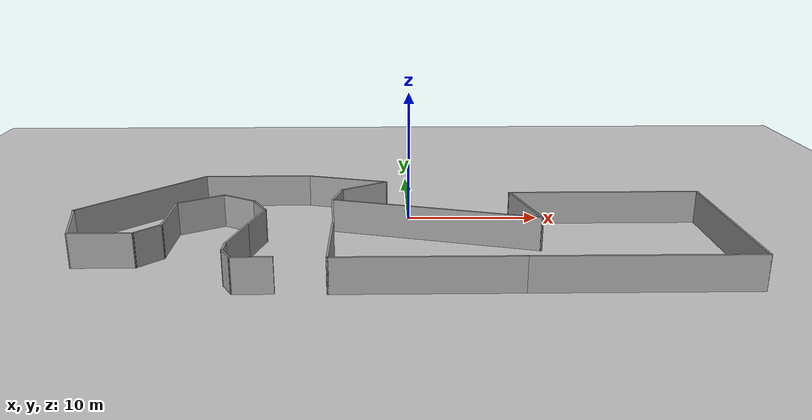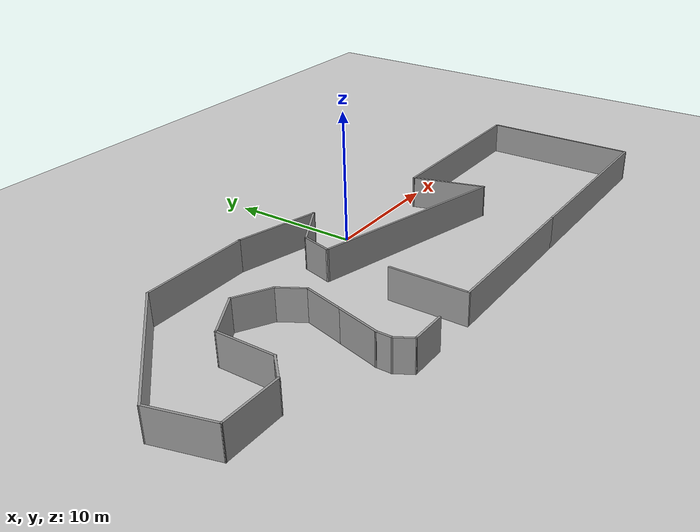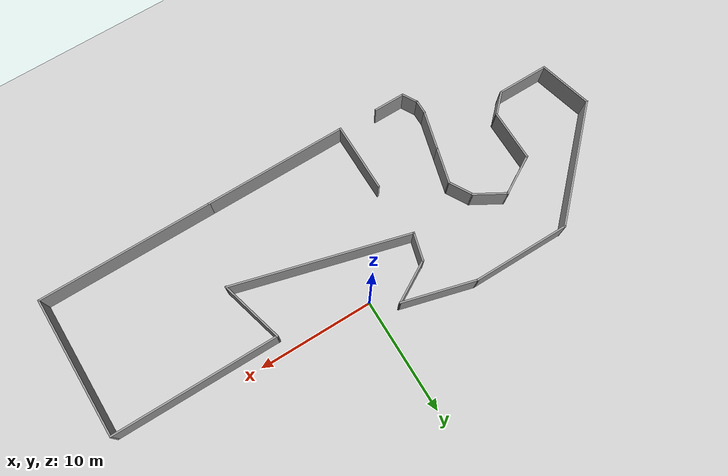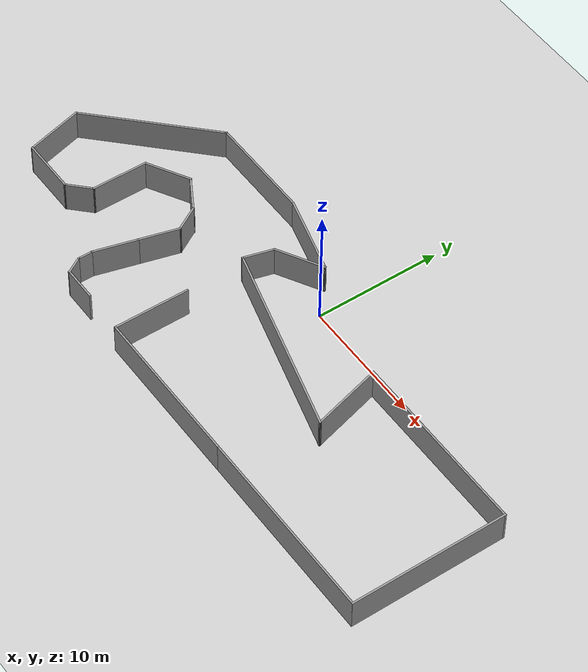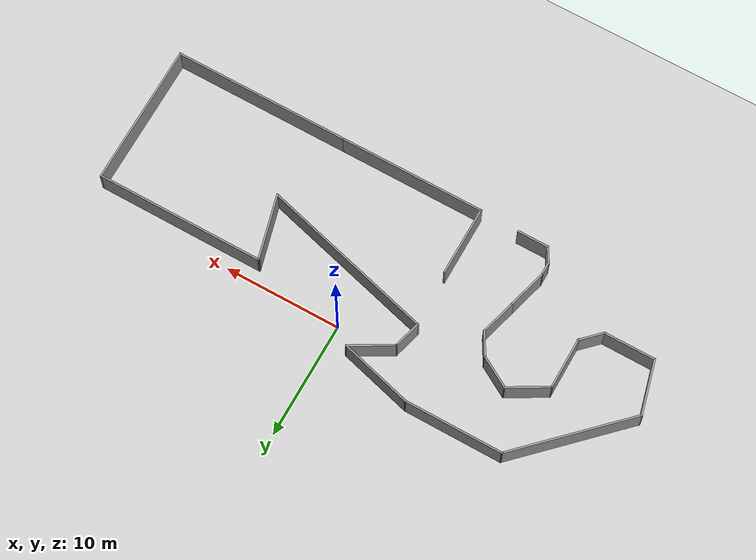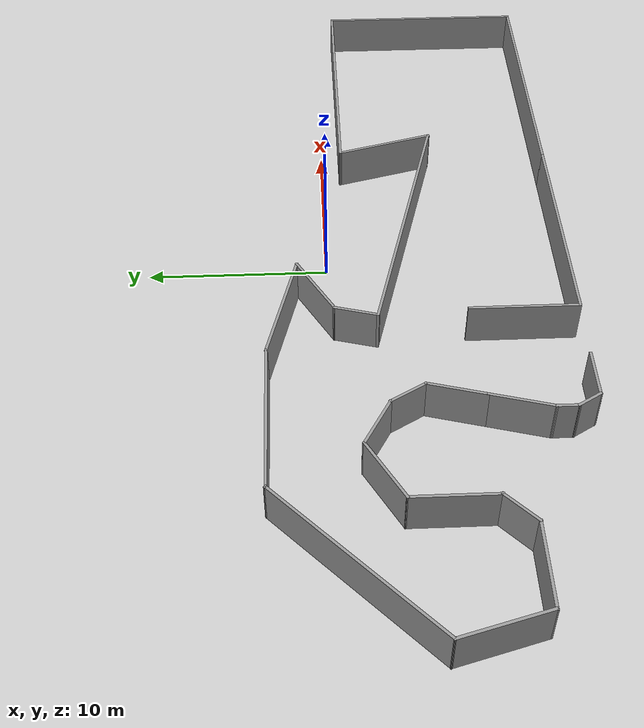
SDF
<sdf version="1.6">
 <world name="default">
  <light name="sun" type="directional">
   <pose>0 0 10 0 -0 0</pose>
   <diffuse>0.8 0.8 0.8 1</diffuse>
   <specular>0.1 0.1 0.1 1</specular>
   <attenuation>
    <range>1000</range>
    <constant>0.9</constant>
    <linear>0.01</linear>
    <quadratic>0.001</quadratic>
   </attenuation>
   <direction>-0.5 0.5 -1</direction>
  </light>
  <model name="ground_plane">
   <static>1</static>
   <link name="link">
    <collision name="collision">
     <geometry><plane><normal>0 0 1</normal><size>100 100</size></plane></geometry>
     <surface><friction><ode><mu>100</mu><mu2>50</mu2></ode></friction></surface>
    </collision>
    <visual name="visual">
     <cast_shadows>0</cast_shadows>
     <geometry><plane><normal>0 0 1</normal><size>100 100</size></plane></geometry>
     <material>
      <script><uri>file://media/materials/scripts/gazebo.material</uri><name>Gazebo/Grey</name></script>
     </material>
    </visual>
   </link>
  </model>
  <gravity>0 0 -9.8</gravity>
  <magnetic_field>6e-06 2.3e-05 -4.2e-05</magnetic_field>
  <atmosphere type="adiabatic"/>
  <physics name="default_physics" default="0" type="ode">
   <max_step_size>0.001</max_step_size>
   <real_time_factor>1</real_time_factor>
   <real_time_update_rate>1000</real_time_update_rate>
  </physics>
  <scene><ambient>0.4 0.4 0.4 1</ambient><background>0.7 0.7 0.7 1</background><shadows>1</shadows></scene>
  <spherical_coordinates>
   <surface_model>EARTH_WGS84</surface_model>
   <latitude_deg>0</latitude_deg>
   <longitude_deg>0</longitude_deg>
   <elevation>0</elevation>
   <heading_deg>0</heading_deg>
  </spherical_coordinates>
  <model name="example">
   <pose>-1.03544 -4.94798 0 0 -0 0</pose>
   <link name="Wall_10">
    <collision name="Wall_10_Collision">
     <geometry><box><size>6 0.15 2.5</size></box></geometry>
     <pose>0 0 1.25 0 -0 0</pose>
    </collision>
    <visual name="Wall_10_Visual">
     <pose>0 0 1.25 0 -0 0</pose>
     <geometry><box><size>6 0.15 2.5</size></box></geometry>
     <material>
      <script><uri>file://media/materials/scripts/gazebo.material</uri><name>Gazebo/Grey</name></script>
      <ambient>1 1 1 1</ambient>
     </material>
    </visual>
    <pose>-4.37563 -5.34159 0 0 0 -1.5708</pose>
   </link>
   <link name="Wall_11">
    <collision name="Wall_11_Collision">
     <geometry><box><size>12.5 0.15 2.5</size></box></geometry>
     <pose>0 0 1.25 0 -0 0</pose>
    </collision>
    <visual name="Wall_11_Visual">
     <pose>0 0 1.25 0 -0 0</pose>
     <geometry><box><size>12.5 0.15 2.5</size></box></geometry>
     <material>
      <script><uri>file://media/materials/scripts/gazebo.material</uri><name>Gazebo/Grey</name></script>
      <ambient>1 1 1 1</ambient>
     </material>
    </visual>
    <pose>1.79937 -8.26659 0 0 -0 0</pose>
   </link>
   <link name="Wall_12">
    <collision name="Wall_12_Collision">
     <geometry><box><size>15.25 0.15 2.5</size></box></geometry>
     <pose>0 0 1.25 0 -0 0</pose>
    </collision>
    <visual name="Wall_12_Visual">
     <pose>0 0 1.25 0 -0 0</pose>
     <geometry><box><size>15.25 0.15 2.5</size></box></geometry>
     <material>
      <script><uri>file://media/materials/scripts/gazebo.material</uri><name>Gazebo/Grey</name></script>
      <ambient>1 1 1 1</ambient>
     </material>
    </visual>
    <pose>15.5244 -8.26659 0 0 -0 0</pose>
   </link>
   <link name="Wall_13">
    <collision name="Wall_13_Collision">
     <geometry><box><size>12.25 0.15 2.5</size></box></geometry>
     <pose>0 0 1.25 0 -0 0</pose>
    </collision>
    <visual name="Wall_13_Visual">
     <pose>0 0 1.25 0 -0 0</pose>
     <geometry><box><size>12.25 0.15 2.5</size></box></geometry>
     <material>
      <script><uri>file://media/materials/scripts/gazebo.material</uri><name>Gazebo/Grey</name></script>
      <ambient>1 1 1 1</ambient>
     </material>
    </visual>
    <pose>23.0744 -2.21659 0 0 -0 1.5708</pose>
   </link>
   <link name="Wall_14">
    <collision name="Wall_14_Collision">
     <geometry><box><size>14.5 0.15 2.5</size></box></geometry>
     <pose>0 0 1.25 0 -0 0</pose>
    </collision>
    <visual name="Wall_14_Visual">
     <pose>0 0 1.25 0 -0 0</pose>
     <geometry><box><size>14.5 0.15 2.5</size></box></geometry>
     <material>
      <script><uri>file://media/materials/scripts/gazebo.material</uri><name>Gazebo/Grey</name></script>
      <ambient>1 1 1 1</ambient>
     </material>
    </visual>
    <pose>15.8994 3.83341 0 0 -0 3.14159</pose>
   </link>
   <link name="Wall_15">
    <collision name="Wall_15_Collision">
     <geometry><box><size>5.75 0.15 2.5</size></box></geometry>
     <pose>0 0 1.25 0 -0 0</pose>
    </collision>
    <visual name="Wall_15_Visual">
     <pose>0 0 1.25 0 -0 0</pose>
     <geometry><box><size>5.75 0.15 2.5</size></box></geometry>
     <material>
      <script><uri>file://media/materials/scripts/gazebo.material</uri><name>Gazebo/Grey</name></script>
      <ambient>1 1 1 1</ambient>
     </material>
    </visual>
    <pose>9.44906 1.12882 0 0 0 -1.309</pose>
   </link>
   <link name="Wall_16">
    <collision name="Wall_16_Collision">
     <geometry><box><size>15.5 0.15 2.5</size></box></geometry>
     <pose>0 0 1.25 0 -0 0</pose>
    </collision>
    <visual name="Wall_16_Visual">
     <pose>0 0 1.25 0 -0 0</pose>
     <geometry><box><size>15.5 0.15 2.5</size></box></geometry>
     <material>
      <script><uri>file://media/materials/scripts/gazebo.material</uri><name>Gazebo/Grey</name></script>
      <ambient>1 1 1 1</ambient>
     </material>
    </visual>
    <pose>2.76027 0.410661 0 0 -0 2.87979</pose>
   </link>
   <link name="Wall_17">
    <collision name="Wall_17_Collision">
     <geometry><box><size>2.5 0.15 2.5</size></box></geometry>
     <pose>0 0 1.25 0 -0 0</pose>
    </collision>
    <visual name="Wall_17_Visual">
     <pose>0 0 1.25 0 -0 0</pose>
     <geometry><box><size>2.5 0.15 2.5</size></box></geometry>
     <material>
      <script><uri>file://media/materials/scripts/gazebo.material</uri><name>Gazebo/Grey</name></script>
      <ambient>1 1 1 1</ambient>
     </material>
    </visual>
    <pose>-4.3491 3.53206 0 0 -0 1.309</pose>
   </link>
   <link name="Wall_18">
    <collision name="Wall_18_Collision">
     <geometry><box><size>4 0.15 2.5</size></box></geometry>
     <pose>0 0 1.25 0 -0 0</pose>
    </collision>
    <visual name="Wall_18_Visual">
     <pose>0 0 1.25 0 -0 0</pose>
     <geometry><box><size>4 0.15 2.5</size></box></geometry>
     <material>
      <script><uri>file://media/materials/scripts/gazebo.material</uri><name>Gazebo/Grey</name></script>
      <ambient>1 1 1 1</ambient>
     </material>
    </visual>
    <pose>-2.37789 5.62952 0 0 -0 0.523599</pose>
   </link>
   <link name="Wall_19">
    <collision name="Wall_19_Collision">
     <geometry><box><size>6.5 0.15 2.5</size></box></geometry>
     <pose>0 0 1.25 0 -0 0</pose>
    </collision>
    <visual name="Wall_19_Visual">
     <pose>0 0 1.25 0 -0 0</pose>
     <geometry><box><size>6.5 0.15 2.5</size></box></geometry>
     <material>
      <script><uri>file://media/materials/scripts/gazebo.material</uri><name>Gazebo/Grey</name></script>
      <ambient>1 1 1 1</ambient>
     </material>
    </visual>
    <pose>-3.7776 7.41377 0 0 -0 2.87979</pose>
   </link>
   <link name="Wall_20">
    <collision name="Wall_20_Collision">
     <geometry><box><size>8.5 0.15 2.5</size></box></geometry>
     <pose>0 0 1.25 0 -0 0</pose>
    </collision>
    <visual name="Wall_20_Visual">
     <pose>0 0 1.25 0 -0 0</pose>
     <geometry><box><size>8.5 0.15 2.5</size></box></geometry>
     <material>
      <script><uri>file://media/materials/scripts/gazebo.material</uri><name>Gazebo/Grey</name></script>
      <ambient>1 1 1 1</ambient>
     </material>
    </visual>
    <pose>-11.0194 8.23552 0 0 -0 3.14159</pose>
   </link>
   <link name="Wall_21">
    <collision name="Wall_21_Collision">
     <geometry><box><size>11.25 0.15 2.5</size></box></geometry>
     <pose>0 0 1.25 0 -0 0</pose>
    </collision>
    <visual name="Wall_21_Visual">
     <pose>0 0 1.25 0 -0 0</pose>
     <geometry><box><size>11.25 0.15 2.5</size></box></geometry>
     <material>
      <script><uri>file://media/materials/scripts/gazebo.material</uri><name>Gazebo/Grey</name></script>
      <ambient>1 1 1 1</ambient>
     </material>
    </visual>
    <pose>-19.1189 4.31108 0 0 0 -2.35619</pose>
   </link>
   <link name="Wall_22">
    <collision name="Wall_22_Collision">
     <geometry><box><size>4.75 0.15 2.5</size></box></geometry>
     <pose>0 0 1.25 0 -0 0</pose>
    </collision>
    <visual name="Wall_22_Visual">
     <pose>0 0 1.25 0 -0 0</pose>
     <geometry><box><size>4.75 0.15 2.5</size></box></geometry>
     <material>
      <script><uri>file://media/materials/scripts/gazebo.material</uri><name>Gazebo/Grey</name></script>
      <ambient>1 1 1 1</ambient>
     </material>
    </visual>
    <pose>-22.448 -1.83499 0 0 0 -1.309</pose>
   </link>
   <link name="Wall_23">
    <collision name="Wall_23_Collision">
     <geometry><box><size>4.5 0.15 2.5</size></box></geometry>
     <pose>0 0 1.25 0 -0 0</pose>
    </collision>
    <visual name="Wall_23_Visual">
     <pose>0 0 1.25 0 -0 0</pose>
     <geometry><box><size>4.5 0.15 2.5</size></box></geometry>
     <material>
      <script><uri>file://media/materials/scripts/gazebo.material</uri><name>Gazebo/Grey</name></script>
      <ambient>1 1 1 1</ambient>
     </material>
    </visual>
    <pose>-19.6777 -4.05662 0 0 -0 0</pose>
   </link>
   <link name="Wall_24">
    <collision name="Wall_24_Collision">
     <geometry><box><size>2.25 0.15 2.5</size></box></geometry>
     <pose>0 0 1.25 0 -0 0</pose>
    </collision>
    <visual name="Wall_24_Visual">
     <pose>0 0 1.25 0 -0 0</pose>
     <geometry><box><size>2.25 0.15 2.5</size></box></geometry>
     <material>
      <script><uri>file://media/materials/scripts/gazebo.material</uri><name>Gazebo/Grey</name></script>
      <ambient>1 1 1 1</ambient>
     </material>
    </visual>
    <pose>-16.7603 -3.31416 0 0 -0 0.785398</pose>
   </link>
   <link name="Wall_25">
    <collision name="Wall_25_Collision">
     <geometry><box><size>4.5 0.15 2.5</size></box></geometry>
     <pose>0 0 1.25 0 -0 0</pose>
    </collision>
    <visual name="Wall_25_Visual">
     <pose>0 0 1.25 0 -0 0</pose>
     <geometry><box><size>4.5 0.15 2.5</size></box></geometry>
     <material>
      <script><uri>file://media/materials/scripts/gazebo.material</uri><name>Gazebo/Grey</name></script>
      <ambient>1 1 1 1</ambient>
     </material>
    </visual>
    <pose>-16.0178 -0.396696 0 0 -0 1.5708</pose>
   </link>
   <link name="Wall_26">
    <collision name="Wall_26_Collision">
     <geometry><box><size>3.75 0.15 2.5</size></box></geometry>
     <pose>0 0 1.25 0 -0 0</pose>
    </collision>
    <visual name="Wall_26_Visual">
     <pose>0 0 1.25 0 -0 0</pose>
     <geometry><box><size>3.75 0.15 2.5</size></box></geometry>
     <material>
      <script><uri>file://media/materials/scripts/gazebo.material</uri><name>Gazebo/Grey</name></script>
      <ambient>1 1 1 1</ambient>
     </material>
    </visual>
    <pose>-14.459 2.6783 0 0 -0 0.523599</pose>
   </link>
   <link name="Wall_27">
    <collision name="Wall_27_Collision">
     <geometry><box><size>3 0.15 2.5</size></box></geometry>
     <pose>0 0 1.25 0 -0 0</pose>
    </collision>
    <visual name="Wall_27_Visual">
     <pose>0 0 1.25 0 -0 0</pose>
     <geometry><box><size>3 0.15 2.5</size></box></geometry>
     <material>
      <script><uri>file://media/materials/scripts/gazebo.material</uri><name>Gazebo/Grey</name></script>
      <ambient>1 1 1 1</ambient>
     </material>
    </visual>
    <pose>-11.666 2.8658 0 0 0 -0.523599</pose>
   </link>
   <link name="Wall_28">
    <collision name="Wall_28_Collision">
     <geometry><box><size>2.25 0.15 2.5</size></box></geometry>
     <pose>0 0 1.25 0 -0 0</pose>
    </collision>
    <visual name="Wall_28_Visual">
     <pose>0 0 1.25 0 -0 0</pose>
     <geometry><box><size>2.25 0.15 2.5</size></box></geometry>
     <material>
      <script><uri>file://media/materials/scripts/gazebo.material</uri><name>Gazebo/Grey</name></script>
      <ambient>1 1 1 1</ambient>
     </material>
    </visual>
    <pose>-9.90695 1.24398 0 0 0 -1.0472</pose>
   </link>
   <link name="Wall_29">
    <collision name="Wall_29_Collision">
     <geometry><box><size>3.25 0.15 2.5</size></box></geometry>
     <pose>0 0 1.25 0 -0 0</pose>
    </collision>
    <visual name="Wall_29_Visual">
     <pose>0 0 1.25 0 -0 0</pose>
     <geometry><box><size>3.25 0.15 2.5</size></box></geometry>
     <material>
      <script><uri>file://media/materials/scripts/gazebo.material</uri><name>Gazebo/Grey</name></script>
      <ambient>1 1 1 1</ambient>
     </material>
    </visual>
    <pose>-9.78311 -1.16253 0 0 0 -1.8326</pose>
   </link>
   <link name="Wall_30">
    <collision name="Wall_30_Collision">
     <geometry><box><size>3.5 0.15 2.5</size></box></geometry>
     <pose>0 0 1.25 0 -0 0</pose>
    </collision>
    <visual name="Wall_30_Visual">
     <pose>0 0 1.25 0 -0 0</pose>
     <geometry><box><size>3.5 0.15 2.5</size></box></geometry>
     <material>
      <script><uri>file://media/materials/scripts/gazebo.material</uri><name>Gazebo/Grey</name></script>
      <ambient>1 1 1 1</ambient>
     </material>
    </visual>
    <pose>-10.6178 -4.27764 0 0 0 -1.8326</pose>
   </link>
   <link name="Wall_31">
    <collision name="Wall_31_Collision">
     <geometry><box><size>1.25 0.15 2.5</size></box></geometry>
     <pose>0 0 1.25 0 -0 0</pose>
    </collision>
    <visual name="Wall_31_Visual">
     <pose>0 0 1.25 0 -0 0</pose>
     <geometry><box><size>1.25 0.15 2.5</size></box></geometry>
     <material>
      <script><uri>file://media/materials/scripts/gazebo.material</uri><name>Gazebo/Grey</name></script>
      <ambient>1 1 1 1</ambient>
     </material>
    </visual>
    <pose>-11.0513 -6.44557 0 0 0 -1.5708</pose>
   </link>
   <link name="Wall_32">
    <collision name="Wall_32_Collision">
     <geometry><box><size>1.5 0.15 2.5</size></box></geometry>
     <pose>0 0 1.25 0 -0 0</pose>
    </collision>
    <visual name="Wall_32_Visual">
     <pose>0 0 1.25 0 -0 0</pose>
     <geometry><box><size>1.5 0.15 2.5</size></box></geometry>
     <material>
      <script><uri>file://media/materials/scripts/gazebo.material</uri><name>Gazebo/Grey</name></script>
      <ambient>1 1 1 1</ambient>
     </material>
    </visual>
    <pose>-10.7138 -7.58014 0 0 0 -1.0472</pose>
   </link>
   <link name="Wall_33">
    <collision name="Wall_33_Collision">
     <geometry><box><size>2.75 0.15 2.5</size></box></geometry>
     <pose>0 0 1.25 0 -0 0</pose>
    </collision>
    <visual name="Wall_33_Visual">
     <pose>0 0 1.25 0 -0 0</pose>
     <geometry><box><size>2.75 0.15 2.5</size></box></geometry>
     <material>
      <script><uri>file://media/materials/scripts/gazebo.material</uri><name>Gazebo/Grey</name></script>
      <ambient>1 1 1 1</ambient>
     </material>
    </visual>
    <pose>-9.07633 -8.1647 0 0 -0 0</pose>
   </link>
   <static>1</static>
  </model>
 </world>
</sdf>
